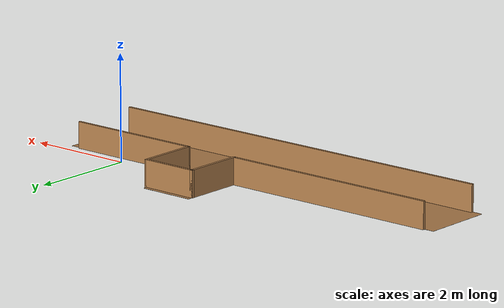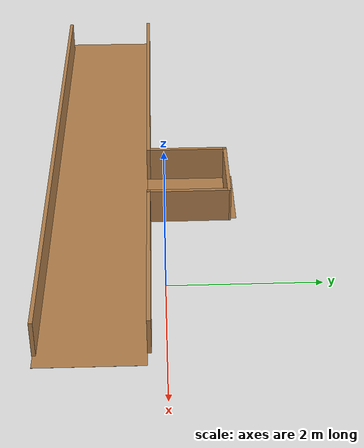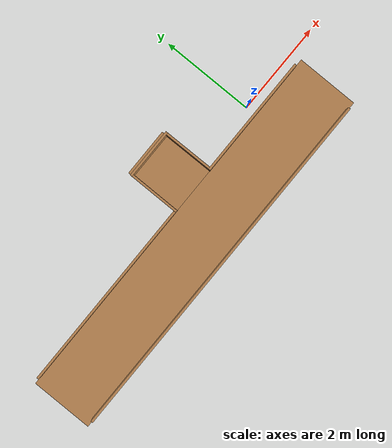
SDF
<?xml version='1.0'?>
<sdf version='1.7'>
  <model name='parking_mission.world'>
    <pose>-2.721 -0.2985 0 0 -0 0</pose>
    <link name='Wall_1'>
      <collision name='Wall_1_Collision'>
        <geometry>
          <box>
            <size>7.90022 0.05 0.5</size>
          </box>
        </geometry>
        <pose>0 0 0.25 0 -0 0</pose>
      </collision>
      <visual name='Wall_1_Visual'>
        <pose>0 0 0.25 0 -0 0</pose>
        <geometry>
          <box>
            <size>7.90022 0.05 0.5</size>
          </box>
        </geometry>
        <material>
          <script>
            <uri>file://media/materials/scripts/gazebo.material</uri>
            <name>Gazebo/Wood</name>
          </script>
          <ambient>1 1 1 1</ambient>
        </material>
        <meta>
          <layer>0</layer>
        </meta>
      </visual>
      <pose>-0.002 -1.2645 0 0 -0 0</pose>
    </link>
    <link name='Wall_13'>
      <collision name='Wall_13_Collision'>
        <geometry>
          <box>
            <size>1.1 0.05 0.5</size>
          </box>
        </geometry>
        <pose>0 0 0.25 0 -0 0</pose>
      </collision>
      <visual name='Wall_13_Visual'>
        <pose>0 0 0.25 0 -0 0</pose>
        <geometry>
          <box>
            <size>1.1 0.05 0.5</size>
          </box>
        </geometry>
        <material>
          <script>
            <uri>file://media/materials/scripts/gazebo.material</uri>
            <name>Gazebo/Wood</name>
          </script>
          <ambient>1 1 1 1</ambient>
        </material>
        <meta>
          <layer>0</layer>
        </meta>
      </visual>
      <pose>0.784 1.1855 0 0 -0 3.14159</pose>
    </link>
    <link name='Wall_15'>
      <collision name='Wall_15_Collision'>
        <geometry>
          <box>
            <size>1.15 0.05 0.5</size>
          </box>
        </geometry>
        <pose>0 0 0.25 0 -0 0</pose>
      </collision>
      <visual name='Wall_15_Visual'>
        <pose>0 0 0.25 0 -0 0</pose>
        <geometry>
          <box>
            <size>1.15 0.05 0.5</size>
          </box>
        </geometry>
        <material>
          <script>
            <uri>file://media/materials/scripts/gazebo.material</uri>
            <name>Gazebo/Wood</name>
          </script>
          <ambient>1 1 1 1</ambient>
        </material>
        <meta>
          <layer>0</layer>
        </meta>
      </visual>
      <pose>0.259 0.6355 0 0 -0 -1.5708</pose>
    </link>
    <link name='Wall_16'>
      <collision name='Wall_16_Collision'>
        <geometry>
          <box>
            <size>4.25 0.05 0.5</size>
          </box>
        </geometry>
        <pose>0 0 0.25 0 -0 0</pose>
      </collision>
      <visual name='Wall_16_Visual'>
        <pose>0 0 0.25 0 -0 0</pose>
        <geometry>
          <box>
            <size>4.25 0.05 0.5</size>
          </box>
        </geometry>
        <material>
          <script>
            <uri>file://media/materials/scripts/gazebo.material</uri>
            <name>Gazebo/Wood</name>
          </script>
          <ambient>1 1 1 1</ambient>
        </material>
        <meta>
          <layer>0</layer>
        </meta>
      </visual>
      <pose>-1.841 0.0855 0 0 -0 3.14159</pose>
    </link>
    <link name='Wall_19'>
      <collision name='Wall_19_Collision'>
        <geometry>
          <box>
            <size>2.65 0.05 0.5</size>
          </box>
        </geometry>
        <pose>0 0 0.25 0 -0 0</pose>
      </collision>
      <visual name='Wall_19_Visual'>
        <pose>0 0 0.25 0 -0 0</pose>
        <geometry>
          <box>
            <size>2.65 0.05 0.5</size>
          </box>
        </geometry>
        <material>
          <script>
            <uri>file://media/materials/scripts/gazebo.material</uri>
            <name>Gazebo/Wood</name>
          </script>
          <ambient>1 1 1 1</ambient>
        </material>
        <meta>
          <layer>0</layer>
        </meta>
      </visual>
      <pose>2.616 0.0855 0 0 -0 0</pose>
    </link>
    <link name='Wall_21'>
      <collision name='Wall_21_Collision'>
        <geometry>
          <box>
            <size>1.15002 0.05 0.5</size>
          </box>
        </geometry>
        <pose>0 0 0.25 0 -0 0</pose>
      </collision>
      <visual name='Wall_21_Visual'>
        <pose>0 0 0.25 0 -0 0</pose>
        <geometry>
          <box>
            <size>1.15002 0.05 0.5</size>
          </box>
        </geometry>
        <material>
          <script>
            <uri>file://media/materials/scripts/gazebo.material</uri>
            <name>Gazebo/Wood</name>
          </script>
          <ambient>1 1 1 1</ambient>
        </material>
        <meta>
          <layer>0</layer>
        </meta>
      </visual>
      <pose>1.3125 0.6355 0 0 -0 -1.56443</pose>
    </link>
    <link name='Wall_23'>
      <collision name='Wall_23_Collision'>
        <geometry>
          <box>
            <size>8.3 1.35 0.001</size>
          </box>
        </geometry>
        <pose>0 0 0.0005 0 -0 0</pose>
      </collision>
      <visual name='Wall_23_Visual'>
        <pose>0 0 0.0005 0 -0 0</pose>
        <geometry>
          <box>
            <size>8.3 1.35 0.001</size>
          </box>
        </geometry>
        <material>
          <script>
            <uri>file://media/materials/scripts/gazebo.material</uri>
            <name>Gazebo/Wood</name>
          </script>
          <ambient>1 1 1 1</ambient>
        </material>
        <meta>
          <layer>0</layer>
        </meta>
      </visual>
      <pose>0 -0.6075 0 0 -0 0</pose>
    </link>
    <link name='Wall_27'>
      <collision name='Wall_27_Collision'>
        <geometry>
          <box>
            <size>1.4 1.05 0.001</size>
          </box>
        </geometry>
        <pose>0 0 0.0005 0 -0 0</pose>
      </collision>
      <visual name='Wall_27_Visual'>
        <pose>0 0 0.0005 0 -0 0</pose>
        <geometry>
          <box>
            <size>1.4 1.05 0.001</size>
          </box>
        </geometry>
        <material>
          <script>
            <uri>file://media/materials/scripts/gazebo.material</uri>
            <name>Gazebo/Wood</name>
          </script>
          <ambient>1 1 1 1</ambient>
        </material>
        <meta>
          <layer>0</layer>
        </meta>
      </visual>
      <pose>0.771 0.5895 0 0 -0 -1.5708</pose>
    </link>
    <static>1</static>
  </model>
</sdf>
